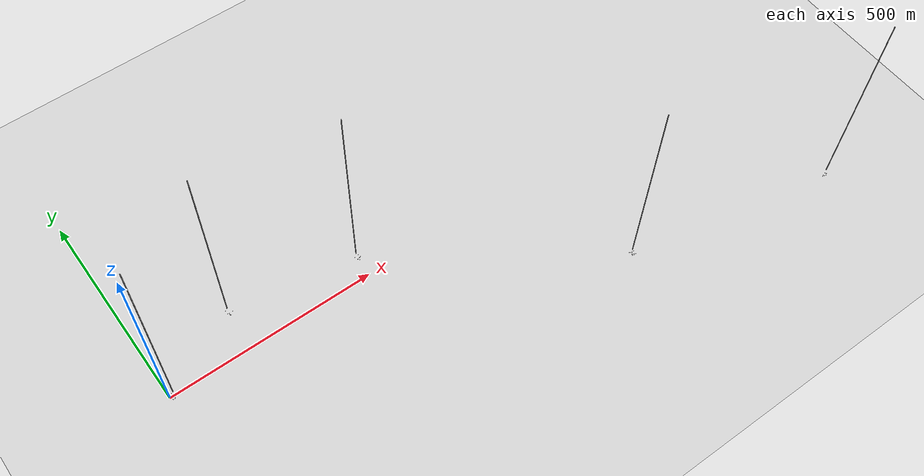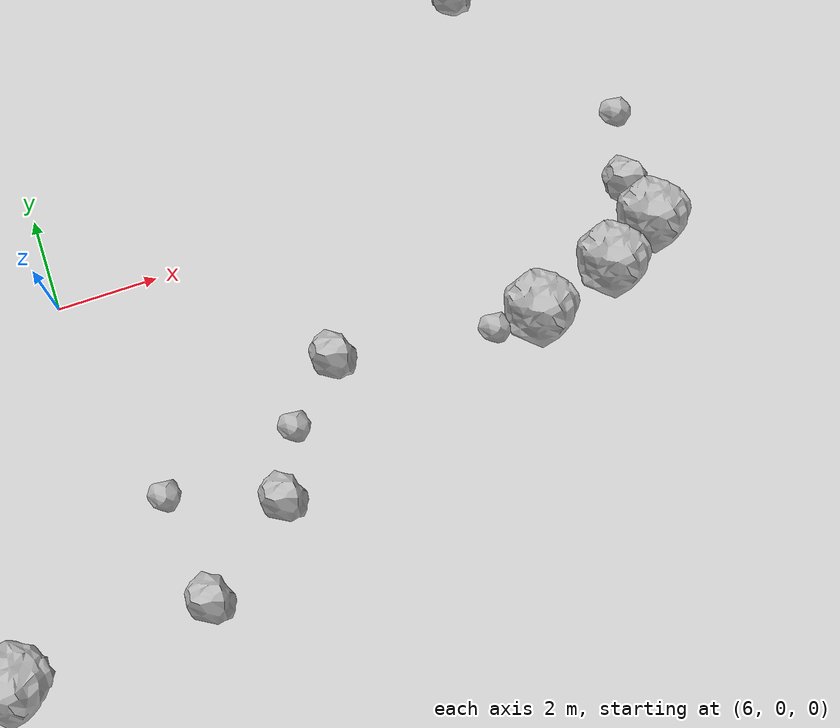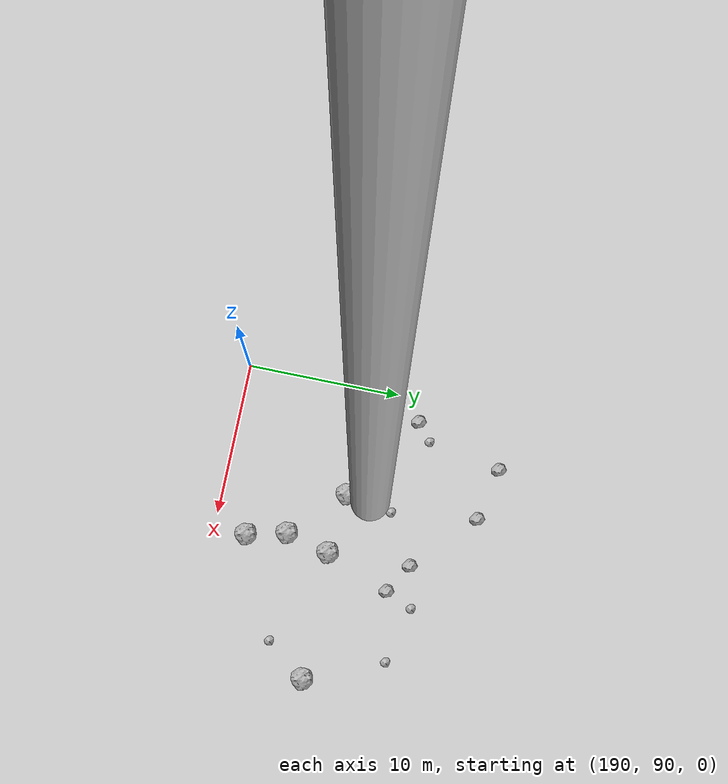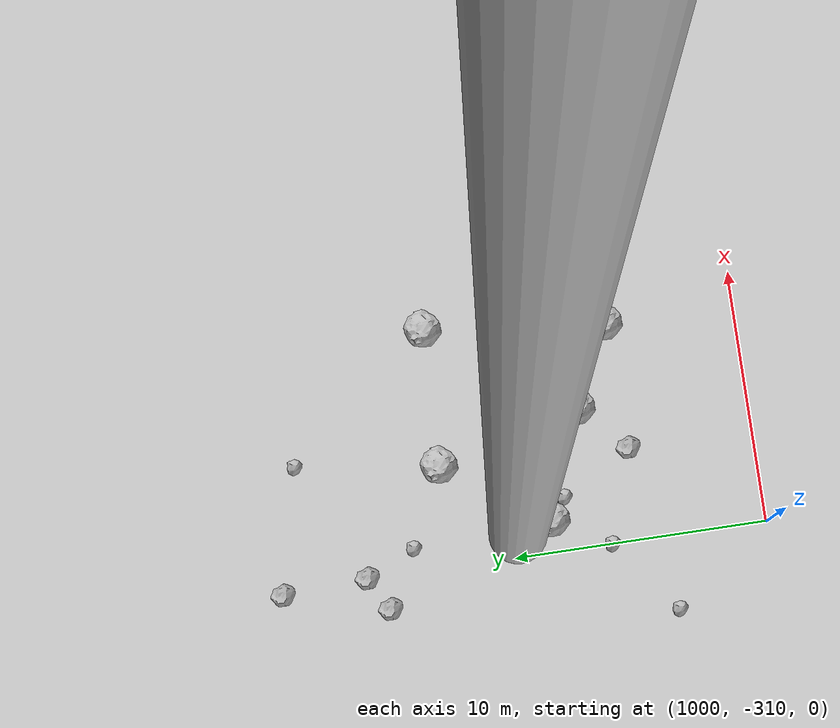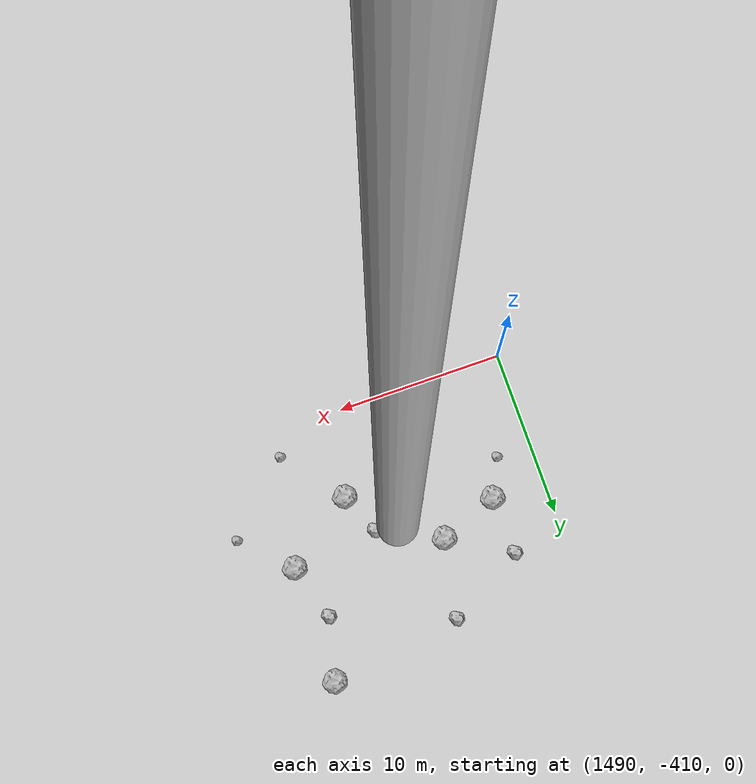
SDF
<?xml version="1.0" ?>
<sdf version="1.6">
  <world name="default">

    <include>
      <uri>model://custom_ground</uri>
    </include>

    <include>
      <uri>model://sun</uri>
    </include>

    <spherical_coordinates>
      <surface_model>EARTH_WGS84</surface_model>
      <latitude_deg>38.161479</latitude_deg>
      <longitude_deg>-122.454630</longitude_deg>
      <elevation>488.0</elevation>
      <heading_deg>90</heading_deg>
    </spherical_coordinates>

    <model name="rock1_0_0">
      <include>
        <uri>model://rock1</uri>
        <pose>14.964314813209597 -3.268121191228646 0.5 0 0 0</pose>
      </include>
    </model>
    <model name="rock1_0_1">
      <include>
        <uri>model://rock1</uri>
        <pose>1.846626726186067 -4.827712343482771 0.5 0 0 0</pose>
      </include>
    </model>
    <model name="rock1_0_2">
      <include>
        <uri>model://rock1</uri>
        <pose>16.686923295522156 -2.784729877304515 0.5 0 0 0</pose>
      </include>
    </model>
    <model name="rock1_0_3">
      <include>
        <uri>model://rock1</uri>
        <pose>3.526925147079416 -6.784641626751173 0.5 0 0 0</pose>
      </include>
    </model>
    <model name="rock1_0_4">
      <include>
        <uri>model://rock1</uri>
        <pose>17.80143530626801 -2.161272886601475 0.5 0 0 0</pose>
      </include>
    </model>
    <model name="rock2_0_0">
      <include>
        <uri>model://rock2</uri>
        <pose>17.611758699971453 -1.1768141345197431 0.3 0 0 0</pose>
      </include>
    </model>
    <model name="rock2_0_1">
      <include>
        <uri>model://rock2</uri>
        <pose>9.049895496248485 -5.120686156140719 0.3 0 0 0</pose>
      </include>
    </model>
    <model name="rock2_0_2">
      <include>
        <uri>model://rock2</uri>
        <pose>7.221355494171946 -6.476202984474851 0.3 0 0 0</pose>
      </include>
    </model>
    <model name="rock2_0_3">
      <include>
        <uri>model://rock2</uri>
        <pose>10.812761253395509 -2.77174999516318 0.3 0 0 0</pose>
      </include>
    </model>
    <model name="rock2_0_4">
      <include>
        <uri>model://rock2</uri>
        <pose>15.781476443296015 4.1608218233005285 0.3 0 0 0</pose>
      </include>
    </model>
    <model name="rock3_0_0">
      <include>
        <uri>model://rock3</uri>
        <pose>6.946281336902606 -4.368974251906 0.2 0 0 0</pose>
      </include>
    </model>
    <model name="rock3_0_1">
      <include>
        <uri>model://rock3</uri>
        <pose>9.659875018860083 -3.890524461280977 0.2 0 0 0</pose>
      </include>
    </model>
    <model name="rock3_0_2">
      <include>
        <uri>model://rock3</uri>
        <pose>18.036598456291657 0.33888976247335734 0.2 0 0 0</pose>
      </include>
    </model>
    <model name="rock3_0_3">
      <include>
        <uri>model://rock3</uri>
        <pose>13.988398382453969 -3.2902716405766235 0.2 0 0 0</pose>
      </include>
    </model>
    <model name="rock3_0_4">
      <include>
        <uri>model://rock3</uri>
        <pose>6.321333185178082 7.631727432591152 0.2 0 0 0</pose>
      </include>
    </model>
    <model name="rock1_1_0">
      <include>
        <uri>model://rock1</uri>
        <pose>197.21051282878943 98.0035306256103 0.5 0 0 0</pose>
      </include>
    </model>
    <model name="rock1_1_1">
      <include>
        <uri>model://rock1</uri>
        <pose>209.46540372498765 97.59705044714886 0.5 0 0 0</pose>
      </include>
    </model>
    <model name="rock1_1_2">
      <include>
        <uri>model://rock1</uri>
        <pose>201.0760035684284 92.10515732345878 0.5 0 0 0</pose>
      </include>
    </model>
    <model name="rock1_1_3">
      <include>
        <uri>model://rock1</uri>
        <pose>200.46393289192315 94.69911912813564 0.5 0 0 0</pose>
      </include>
    </model>
    <model name="rock1_1_4">
      <include>
        <uri>model://rock1</uri>
        <pose>201.19900478644016 97.55218363921733 0.5 0 0 0</pose>
      </include>
    </model>
    <model name="rock2_1_0">
      <include>
        <uri>model://rock2</uri>
        <pose>202.8481539028824 101.79348140970131 0.3 0 0 0</pose>
      </include>
    </model>
    <model name="rock2_1_1">
      <include>
        <uri>model://rock2</uri>
        <pose>191.51868707259788 101.67929156972217 0.3 0 0 0</pose>
      </include>
    </model>
    <model name="rock2_1_2">
      <include>
        <uri>model://rock2</uri>
        <pose>197.06633279344547 106.649822834132 0.3 0 0 0</pose>
      </include>
    </model>
    <model name="rock2_1_3">
      <include>
        <uri>model://rock2</uri>
        <pose>193.60066119884306 107.42244183153409 0.3 0 0 0</pose>
      </include>
    </model>
    <model name="rock2_1_4">
      <include>
        <uri>model://rock2</uri>
        <pose>200.9385199544388 102.94982696438139 0.3 0 0 0</pose>
      </include>
    </model>
    <model name="rock3_1_0">
      <include>
        <uri>model://rock3</uri>
        <pose>192.6753217027612 102.60350875828247 0.2 0 0 0</pose>
      </include>
    </model>
    <model name="rock3_1_1">
      <include>
        <uri>model://rock3</uri>
        <pose>203.63632262672286 103.53249174117221 0.2 0 0 0</pose>
      </include>
    </model>
    <model name="rock3_1_2">
      <include>
        <uri>model://rock3</uri>
        <pose>197.74246402904268 101.04201218655672 0.2 0 0 0</pose>
      </include>
    </model>
    <model name="rock3_1_3">
      <include>
        <uri>model://rock3</uri>
        <pose>207.46309239850183 95.00225618542125 0.2 0 0 0</pose>
      </include>
    </model>
    <model name="rock3_1_4">
      <include>
        <uri>model://rock3</uri>
        <pose>207.33739929908708 102.5991680702864 0.2 0 0 0</pose>
      </include>
    </model>
    <model name="rock1_2_0">
      <include>
        <uri>model://rock1</uri>
        <pose>505.5108651427984 47.808402591343494 0.5 0 0 0</pose>
      </include>
    </model>
    <model name="rock1_2_1">
      <include>
        <uri>model://rock1</uri>
        <pose>509.8776340427866 48.763661010456445 0.5 0 0 0</pose>
      </include>
    </model>
    <model name="rock1_2_2">
      <include>
        <uri>model://rock1</uri>
        <pose>500.9182179281137 45.74730380074844 0.5 0 0 0</pose>
      </include>
    </model>
    <model name="rock1_2_3">
      <include>
        <uri>model://rock1</uri>
        <pose>507.1126291003966 46.92277413450832 0.5 0 0 0</pose>
      </include>
    </model>
    <model name="rock1_2_4">
      <include>
        <uri>model://rock1</uri>
        <pose>507.6978798002818 54.687499104112526 0.5 0 0 0</pose>
      </include>
    </model>
    <model name="rock2_2_0">
      <include>
        <uri>model://rock2</uri>
        <pose>497.9983191106686 52.88246814257512 0.3 0 0 0</pose>
      </include>
    </model>
    <model name="rock2_2_1">
      <include>
        <uri>model://rock2</uri>
        <pose>496.9793445974493 55.34391575640289 0.3 0 0 0</pose>
      </include>
    </model>
    <model name="rock2_2_2">
      <include>
        <uri>model://rock2</uri>
        <pose>507.4469374468452 47.272023045432014 0.3 0 0 0</pose>
      </include>
    </model>
    <model name="rock2_2_3">
      <include>
        <uri>model://rock2</uri>
        <pose>506.6590631801424 46.6944253753504 0.3 0 0 0</pose>
      </include>
    </model>
    <model name="rock2_2_4">
      <include>
        <uri>model://rock2</uri>
        <pose>498.08027352339735 48.10557439936011 0.3 0 0 0</pose>
      </include>
    </model>
    <model name="rock3_2_0">
      <include>
        <uri>model://rock3</uri>
        <pose>503.95245027797546 42.36067365868416 0.2 0 0 0</pose>
      </include>
    </model>
    <model name="rock3_2_1">
      <include>
        <uri>model://rock3</uri>
        <pose>491.2593566822706 51.19186107428126 0.2 0 0 0</pose>
      </include>
    </model>
    <model name="rock3_2_2">
      <include>
        <uri>model://rock3</uri>
        <pose>496.8485133833427 40.96730248218682 0.2 0 0 0</pose>
      </include>
    </model>
    <model name="rock3_2_3">
      <include>
        <uri>model://rock3</uri>
        <pose>503.1138350269538 51.36317668498383 0.2 0 0 0</pose>
      </include>
    </model>
    <model name="rock3_2_4">
      <include>
        <uri>model://rock3</uri>
        <pose>497.99624624614245 55.891704781405465 0.2 0 0 0</pose>
      </include>
    </model>
    <model name="rock1_3_0">
      <include>
        <uri>model://rock1</uri>
        <pose>1008.7613321551578 -304.81560612738446 0.5 0 0 0</pose>
      </include>
    </model>
    <model name="rock1_3_1">
      <include>
        <uri>model://rock1</uri>
        <pose>1001.387021589872 -301.62275127415677 0.5 0 0 0</pose>
      </include>
    </model>
    <model name="rock1_3_2">
      <include>
        <uri>model://rock1</uri>
        <pose>1004.1237709967586 -297.5632489493985 0.5 0 0 0</pose>
      </include>
    </model>
    <model name="rock1_3_3">
      <include>
        <uri>model://rock1</uri>
        <pose>1009.5385165943044 -297.7039050323144 0.5 0 0 0</pose>
      </include>
    </model>
    <model name="rock1_3_4">
      <include>
        <uri>model://rock1</uri>
        <pose>1005.6105635035749 -303.2557159271013 0.5 0 0 0</pose>
      </include>
    </model>
    <model name="rock2_3_0">
      <include>
        <uri>model://rock2</uri>
        <pose>1000.1103199947412 -294.12454808932574 0.3 0 0 0</pose>
      </include>
    </model>
    <model name="rock2_3_1">
      <include>
        <uri>model://rock2</uri>
        <pose>1006.5130552783629 -302.5040425193486 0.3 0 0 0</pose>
      </include>
    </model>
    <model name="rock2_3_2">
      <include>
        <uri>model://rock2</uri>
        <pose>999.9376114371291 -290.7528459867578 0.3 0 0 0</pose>
      </include>
    </model>
    <model name="rock2_3_3">
      <include>
        <uri>model://rock2</uri>
        <pose>998.785913436409 -294.86149347022547 0.3 0 0 0</pose>
      </include>
    </model>
    <model name="rock2_3_4">
      <include>
        <uri>model://rock2</uri>
        <pose>1003.7038017785785 -305.0370280641197 0.3 0 0 0</pose>
      </include>
    </model>
    <model name="rock3_3_0">
      <include>
        <uri>model://rock3</uri>
        <pose>1000.9915251618501 -296.11686520801027 0.2 0 0 0</pose>
      </include>
    </model>
    <model name="rock3_3_1">
      <include>
        <uri>model://rock3</uri>
        <pose>997.1125020185134 -306.1327887519883 0.2 0 0 0</pose>
      </include>
    </model>
    <model name="rock3_3_2">
      <include>
        <uri>model://rock3</uri>
        <pose>1000.0235190756545 -303.88768465984424 0.2 0 0 0</pose>
      </include>
    </model>
    <model name="rock3_3_3">
      <include>
        <uri>model://rock3</uri>
        <pose>1004.850720427669 -291.92551084585097 0.2 0 0 0</pose>
      </include>
    </model>
    <model name="rock3_3_4">
      <include>
        <uri>model://rock3</uri>
        <pose>1002.1304097212036 -302.278427116751 0.2 0 0 0</pose>
      </include>
    </model>
    <model name="rock1_4_0">
      <include>
        <uri>model://rock1</uri>
        <pose>1493.26211423215 -401.97578844254883 0.5 0 0 0</pose>
      </include>
    </model>
    <model name="rock1_4_1">
      <include>
        <uri>model://rock1</uri>
        <pose>1505.6527894875426 -401.868822053247 0.5 0 0 0</pose>
      </include>
    </model>
    <model name="rock1_4_2">
      <include>
        <uri>model://rock1</uri>
        <pose>1496.7526981241328 -400.6423428800139 0.5 0 0 0</pose>
      </include>
    </model>
    <model name="rock1_4_3">
      <include>
        <uri>model://rock1</uri>
        <pose>1505.5879732563942 -394.8211168648708 0.5 0 0 0</pose>
      </include>
    </model>
    <model name="rock1_4_4">
      <include>
        <uri>model://rock1</uri>
        <pose>1501.4958107405223 -404.8998821940475 0.5 0 0 0</pose>
      </include>
    </model>
    <model name="rock2_4_0">
      <include>
        <uri>model://rock2</uri>
        <pose>1497.6232741885042 -395.93303730297464 0.3 0 0 0</pose>
      </include>
    </model>
    <model name="rock2_4_1">
      <include>
        <uri>model://rock2</uri>
        <pose>1504.6657398621442 -398.52892688670073 0.3 0 0 0</pose>
      </include>
    </model>
    <model name="rock2_4_2">
      <include>
        <uri>model://rock2</uri>
        <pose>1500.4551304290037 -402.4454758710904 0.3 0 0 0</pose>
      </include>
    </model>
    <model name="rock2_4_3">
      <include>
        <uri>model://rock2</uri>
        <pose>1497.9502755087665 -403.80006349970625 0.3 0 0 0</pose>
      </include>
    </model>
    <model name="rock2_4_4">
      <include>
        <uri>model://rock2</uri>
        <pose>1493.0891381084111 -398.46588901772606 0.3 0 0 0</pose>
      </include>
    </model>
    <model name="rock3_4_0">
      <include>
        <uri>model://rock3</uri>
        <pose>1497.406038714463 -403.43328106591383 0.2 0 0 0</pose>
      </include>
    </model>
    <model name="rock3_4_1">
      <include>
        <uri>model://rock3</uri>
        <pose>1504.302733492404 -408.4915264688 0.2 0 0 0</pose>
      </include>
    </model>
    <model name="rock3_4_2">
      <include>
        <uri>model://rock3</uri>
        <pose>1498.5267571509055 -405.34691406036 0.2 0 0 0</pose>
      </include>
    </model>
    <model name="rock3_4_3">
      <include>
        <uri>model://rock3</uri>
        <pose>1492.1193478261494 -404.25524695567276 0.2 0 0 0</pose>
      </include>
    </model>
    <model name="rock3_4_4">
      <include>
        <uri>model://rock3</uri>
        <pose>1508.3247774755 -404.5824763456005 0.2 0 0 0</pose>
      </include>
    </model>

    <model name="cylinder_1">
      <static>true</static>
      <link name="link">
        <visual name="visual">
          <geometry>
            <cylinder>
              <radius>1</radius>
              <length>500</length>
            </cylinder>
          </geometry>
        </visual>
      </link>
      <pose>10 0 270 0 0 0</pose>
    </model>

    <model name="cylinder_2">
      <static>true</static>
      <link name="link">
        <visual name="visual">
          <geometry>
            <cylinder>
              <radius>1</radius>
              <length>500</length>
            </cylinder>
          </geometry>
        </visual>
      </link>
      <pose>200 100 270 0 0 0</pose>
    </model>

    <model name="cylinder_3">
      <static>true</static>
      <link name="link">
        <visual name="visual">
          <geometry>
            <cylinder>
              <radius>1</radius>
              <length>500</length>
            </cylinder>
          </geometry>
        </visual>
      </link>
      <pose>500 50 270 0 0 0</pose>
    </model>

    <model name="cylinder_4">
      <static>true</static>
      <link name="link">
        <visual name="visual">
          <geometry>
            <cylinder>
              <radius>1</radius>
              <length>500</length>
            </cylinder>
          </geometry>
        </visual>
      </link>
      <pose>1000 -300 270 0 0 0</pose>
    </model>

    <model name="cylinder_5">
      <static>true</static>
      <link name="link">
        <visual name="visual">
          <geometry>
            <cylinder>
              <radius>1</radius>
              <length>500</length>
            </cylinder>
          </geometry>
        </visual>
      </link>
      <pose>1500 -400 270 0 0 0</pose>
    </model>

  </world>
</sdf>

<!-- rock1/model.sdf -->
<sdf version="1.6">
  <model name="rock1">
    <static>true</static> <!-- Set to true if the model should not move -->
    <pose>0 0 0 0 0 0</pose>

    <!--z offset is 0.5 for full scale-->

    <link name="link">
      <collision name="rock1_collision">
        <geometry>
          <mesh>
            <uri>model://meshes/rock1.dae</uri>
          </mesh>
        </geometry>
      </collision>
      <visual name="rock1_visual">
        <geometry>
          <mesh>
            <uri>model://meshes/rock1.dae</uri>
          </mesh>
        </geometry>
        <material>
          <script>
            <uri>model://materials/scripts/sand_pebbles.material</uri>
            <name>custom_ground/Image</name>
          </script>
        </material>
      </visual>
    </link>
  </model>
</sdf>

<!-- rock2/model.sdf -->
<sdf version="1.6">
  <model name="rock2">
    <static>true</static> <!-- Set to true if the model should not move -->
    <pose>0 0 0 0 0 0</pose>

    <!--z offset is 0.3 for full scale-->

    <link name="link">
      <collision name="rock2_collision">
        <geometry>
          <mesh>
            <uri>model://meshes/rock2.dae</uri>
          </mesh>
        </geometry>
      </collision>
      <visual name="rock2_visual">
        <geometry>
          <mesh>
            <uri>model://meshes/rock2.dae</uri>
          </mesh>
        </geometry>
        <material>
          <script>
            <uri>model://materials/scripts/sand_pebbles.material</uri>
            <name>custom_ground/Image</name>
          </script>
        </material>
      </visual>
    </link>
  </model>
</sdf>

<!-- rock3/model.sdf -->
<sdf version="1.6">
  <model name="rock3">
    <static>true</static> <!-- Set to true if the model should not move -->
    <pose>0 0 0 0 0 0</pose>

    <!--z offset is 0.2 for full scale-->

    <link name="link">
      <collision name="rock3_collision">
        <geometry>
          <mesh>
            <uri>model://meshes/rock3.dae</uri>
          </mesh>
        </geometry>
      </collision>
      <visual name="rock3_visual">
        <geometry>
          <mesh>
            <uri>model://meshes/rock3.dae</uri>
          </mesh>
        </geometry>
        <material>
          <script>
            <uri>model://materials/scripts/sand_pebbles.material</uri>
            <name>custom_ground/Image</name>
          </script>
        </material>
      </visual>
    </link>
  </model>
</sdf>

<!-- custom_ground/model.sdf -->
<sdf version="1.6">
  <model name="custom_ground">
    <static>true</static> <!-- Ground is static and immovable -->
    <link name="ground_link">
      <pose>240 0 0 0 0 0</pose> <!-- Position and orientation relative to the world -->
      <!-- Visual Representation -->
      <visual name="ground_visual">
        <geometry>
          <plane>
            <normal>0 0 1</normal> <!-- Upward facing plane -->
            <size>500 500</size> <!-- Size of the plane -->
          </plane>
        </geometry>
        <material>
          <script>
            <uri>model://materials/scripts/sand_pebbles.material</uri>
            <name>custom_ground/Image</name>
          </script>
        </material>
      </visual>

      <!-- Collision Representation -->
      <collision name="ground_collision">
        <geometry>
          <plane>
            <normal>0 0 1</normal>
            <size>100 100</size>
          </plane>
        </geometry>
      </collision>

    </link>
  </model>
</sdf>
